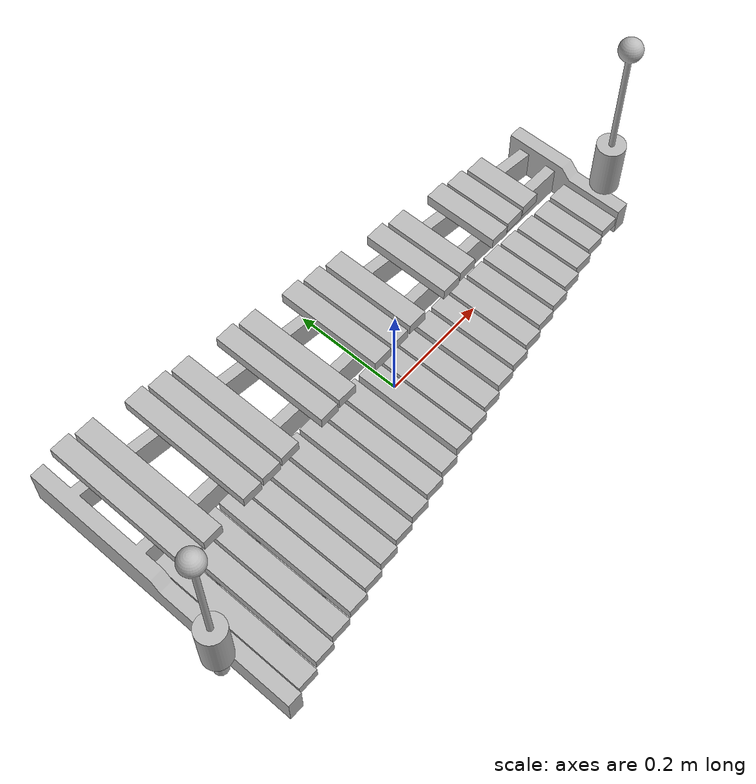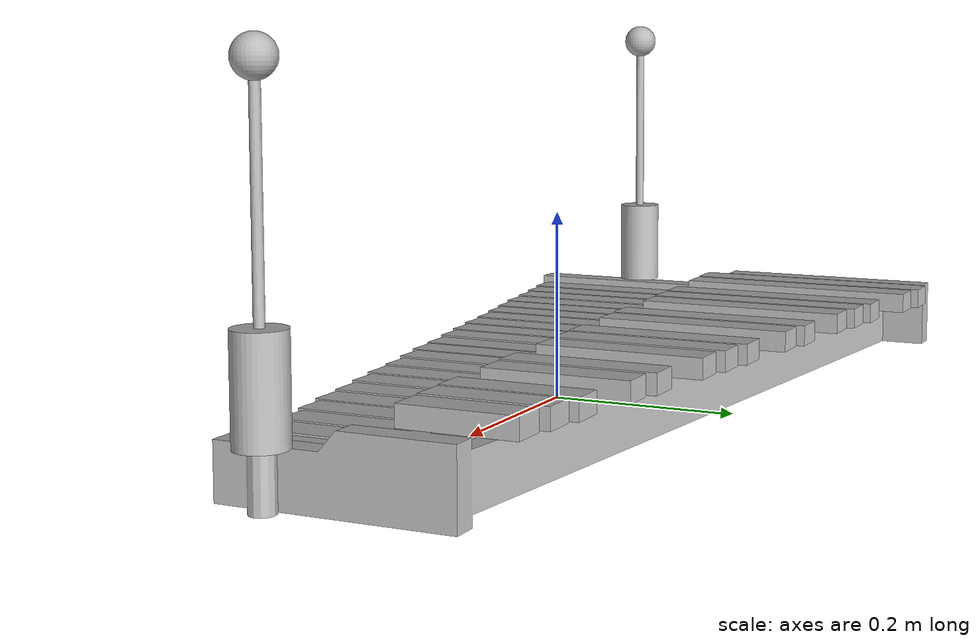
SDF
<?xml version="1.0" ?>
<sdf version="1.6">
	<model name="xylophone">
		<link name="C_3">
			<self_collide>false</self_collide>
			<pose frame="">0.45448777694738957 -0.027488463586150244 0.03602607641514571 0.0 -0.0 0.0</pose>
			<inertial>
				<pose frame="">0.0 0.0 0.0 0 0 0</pose>
				<mass>0.046262938070170255</mass>
				<inertia>
					<ixx>0.00014350861797053416</ixx>
					<ixy>0.0005779909002568655</ixy>
					<ixz>4.5810622566366254e-05</ixz>
					<iyy>0.009623382878610719</iyy>
					<iyz>-0.0007574855243569923</iyz>
					<izz>0.009643073975087112</izz>
				</inertia>
			</inertial>
			<collision name="C_3_collision">
				<geometry>
					<mesh>
						<uri>model://xylophone/meshes/CAD/C_3.stl</uri>
						<scale>0.001 0.001 0.001</scale>
					</mesh>
				</geometry>
			</collision>
			<visual name="C_3_visual">
				<geometry>
					<mesh>
						<uri>model://xylophone/meshes/CAD/C_3.stl</uri>
						<scale>0.001 0.001 0.001</scale>
					</mesh>
				</geometry>
			</visual>
		</link>
		<link name="A_1">
			<self_collide>false</self_collide>
			<pose frame="">0.06149651719972713 -0.05578498333630287 0.0360155619608559 0.0 -0.0 0.0</pose>
			<inertial>
				<pose frame="">0.0 0.0 0.0 0 0 0</pose>
				<mass>0.07752053807017041</mass>
				<inertia>
					<ixx>0.0005637106499617699</ixx>
					<ixy>0.00026595636558719233</ixy>
					<ixz>0.0001557469170174067</ixz>
					<iyy>0.00040595501694493254</iyy>
					<iyz>-0.0001716965634829288</iyz>
					<izz>0.0007623069998125596</izz>
				</inertia>
			</inertial>
			<collision name="A_1_collision">
				<geometry>
					<mesh>
						<uri>model://xylophone/meshes/CAD/A_1.stl</uri>
						<scale>0.001 0.001 0.001</scale>
					</mesh>
				</geometry>
			</collision>
			<visual name="A_1_visual">
				<geometry>
					<mesh>
						<uri>model://xylophone/meshes/CAD/A_1.stl</uri>
						<scale>0.001 0.001 0.001</scale>
					</mesh>
				</geometry>
			</visual>
		</link>
		<link name="A_2">
			<self_collide>false</self_collide>
			<pose frame="">0.3664899596665138 -0.03382394881431653 0.03602312095864534 0.0 -0.0 0.0</pose>
			<inertial>
				<pose frame="">0.0 0.0 0.0 0 0 0</pose>
				<mass>0.05217653807017028</mass>
				<inertia>
					<ixx>0.0001963569812425986</ixx>
					<ixy>0.000646807485995429</ixy>
					<ixz>6.357095834000371e-05</ixz>
					<iyy>0.007084032289712486</iyy>
					<iyz>-0.00068884366238625</iyz>
					<izz>0.007140766667860942</izz>
				</inertia>
			</inertial>
			<collision name="A_2_collision">
				<geometry>
					<mesh>
						<uri>model://xylophone/meshes/CAD/A_2.stl</uri>
						<scale>0.001 0.001 0.001</scale>
					</mesh>
				</geometry>
			</collision>
			<visual name="A_2_visual">
				<geometry>
					<mesh>
						<uri>model://xylophone/meshes/CAD/A_2.stl</uri>
						<scale>0.001 0.001 0.001</scale>
					</mesh>
				</geometry>
			</visual>
		</link>
		<link name="G_2">
			<self_collide>false</self_collide>
			<pose frame="">0.32349125577799714 -0.03691903091623005 0.03602138936294325 0.0 -0.0 0.0</pose>
			<inertial>
				<pose frame="">0.0 0.0 0.0 0 0 0</pose>
				<mass>0.0564005380701702</mass>
				<inertia>
					<ixx>0.00023673750732044108</ixx>
					<ixy>0.0006736102242703571</ixy>
					<ixz>7.500282789721354e-05</ixz>
					<iyy>0.005984210396933613</iyy>
					<iyz>-0.0006572161322062213</iyz>
					<izz>0.006070035957159913</izz>
				</inertia>
			</inertial>
			<collision name="G_2_collision">
				<geometry>
					<mesh>
						<uri>model://xylophone/meshes/CAD/G_2.stl</uri>
						<scale>0.001 0.001 0.001</scale>
					</mesh>
				</geometry>
			</collision>
			<visual name="G_2_visual">
				<geometry>
					<mesh>
						<uri>model://xylophone/meshes/CAD/G_2.stl</uri>
						<scale>0.001 0.001 0.001</scale>
					</mesh>
				</geometry>
			</visual>
		</link>
		<link name="D_2">
			<self_collide>false</self_collide>
			<pose frame="">0.19349458215986062 -0.04628071805747754 0.036018016157183703 0.0 -0.0 0.0</pose>
			<inertial>
				<pose frame="">0.0 0.0 0.0 0 0 0</pose>
				<mass>0.0669605380701705</mass>
				<inertia>
					<ixx>0.00037410228126468804</ixx>
					<ixy>0.0005996545358997112</ixy>
					<ixz>0.00011161645559815828</ixz>
					<iyy>0.0026044491856748978</iyy>
					<iyz>-0.00046666965765261153</iyz>
					<izz>0.0027994161598454428</izz>
				</inertia>
			</inertial>
			<collision name="D_2_collision">
				<geometry>
					<mesh>
						<uri>model://xylophone/meshes/CAD/D_2.stl</uri>
						<scale>0.001 0.001 0.001</scale>
					</mesh>
				</geometry>
			</collision>
			<visual name="D_2_visual">
				<geometry>
					<mesh>
						<uri>model://xylophone/meshes/CAD/D_2.stl</uri>
						<scale>0.001 0.001 0.001</scale>
					</mesh>
				</geometry>
			</visual>
		</link>
		<link name="H_1">
			<self_collide>false</self_collide>
			<pose frame="">0.10649542005933199 -0.052543980478078484 0.03601645877978332 0.0 -0.0 0.0</pose>
			<inertial>
				<pose frame="">0.0 0.0 0.0 0 0 0</pose>
				<mass>0.07329653807017017</mass>
				<inertia>
					<ixx>0.00048538135747040593</ixx>
					<ixy>0.0004101615293656462</ixy>
					<ixz>0.0001387082041457808</ixz>
					<iyy>0.0009379223650701782</iyy>
					<iyz>-0.0002811373347203263</iyz>
					<izz>0.0012272343994464419</izz>
				</inertia>
			</inertial>
			<collision name="H_1_collision">
				<geometry>
					<mesh>
						<uri>model://xylophone/meshes/CAD/H_1.stl</uri>
						<scale>0.001 0.001 0.001</scale>
					</mesh>
				</geometry>
			</collision>
			<visual name="H_1_visual">
				<geometry>
					<mesh>
						<uri>model://xylophone/meshes/CAD/H_1.stl</uri>
						<scale>0.001 0.001 0.001</scale>
					</mesh>
				</geometry>
			</visual>
		</link>
		<link name="C_2">
			<self_collide>false</self_collide>
			<pose frame="">0.150494933134312 -0.04937679410556129 0.03601694710131839 0.0 -0.0 0.0</pose>
			<inertial>
				<pose frame="">0.0 0.0 0.0 0 0 0</pose>
				<mass>0.07118453807017067</mass>
				<inertia>
					<ixx>0.0004382542098897835</ixx>
					<ixy>0.000528986973650466</ixy>
					<ixz>0.00012659221822118325</ixz>
					<iyy>0.0017158151854811217</iyy>
					<iyz>-0.0003858485657120155</iyz>
					<izz>0.0019636447442767614</izz>
				</inertia>
			</inertial>
			<collision name="C_2_collision">
				<geometry>
					<mesh>
						<uri>model://xylophone/meshes/CAD/C_2.stl</uri>
						<scale>0.001 0.001 0.001</scale>
					</mesh>
				</geometry>
			</collision>
			<visual name="C_2_visual">
				<geometry>
					<mesh>
						<uri>model://xylophone/meshes/CAD/C_2.stl</uri>
						<scale>0.001 0.001 0.001</scale>
					</mesh>
				</geometry>
			</visual>
		</link>
		<link name="F_0">
			<self_collide>false</self_collide>
			<pose frame="">-0.3255003203067164 -0.08365491980126465 0.03601087897986214 0.0 -0.0 0.0</pose>
			<inertial>
				<pose frame="">0.0 0.0 0.0 0 0 0</pose>
				<mass>0.11089013807017029</mass>
				<inertia>
					<ixx>0.00156375516577235</ixx>
					<ixy>-0.0030195018902751483</ixy>
					<ixz>0.0003340551538263901</ixz>
					<iyy>0.011910151380577003</iyy>
					<iyz>0.001299804377420893</iyz>
					<izz>0.013177362061655212</izz>
				</inertia>
			</inertial>
			<collision name="F_0_collision">
				<geometry>
					<mesh>
						<uri>model://xylophone/meshes/CAD/F_0.stl</uri>
						<scale>0.001 0.001 0.001</scale>
					</mesh>
				</geometry>
			</collision>
			<visual name="F_0_visual">
				<geometry>
					<mesh>
						<uri>model://xylophone/meshes/CAD/F_0.stl</uri>
						<scale>0.001 0.001 0.001</scale>
					</mesh>
				</geometry>
			</visual>
		</link>
		<link name="H_0">
			<self_collide>false</self_collide>
			<pose frame="">-0.19850142124805137 -0.07450890386704333 0.036012229977680346 0.0 -0.0 0.0</pose>
			<inertial>
				<pose frame="">0.0 0.0 0.0 0 0 0</pose>
				<mass>0.09864053807016995</mass>
				<inertia>
					<ixx>0.0011297880013564647</ixx>
					<ixy>-0.0014588971209523287</ixy>
					<ixz>0.0002646747647855426</ixz>
					<iyy>0.0040301999809936335</iyy>
					<iyz>0.0007051289555880382</iyz>
					<izz>0.004896182595255956</izz>
				</inertia>
			</inertial>
			<collision name="H_0_collision">
				<geometry>
					<mesh>
						<uri>model://xylophone/meshes/CAD/H_0.stl</uri>
						<scale>0.001 0.001 0.001</scale>
					</mesh>
				</geometry>
			</collision>
			<visual name="H_0_visual">
				<geometry>
					<mesh>
						<uri>model://xylophone/meshes/CAD/H_0.stl</uri>
						<scale>0.001 0.001 0.001</scale>
					</mesh>
				</geometry>
			</visual>
		</link>
		<link name="G_0">
			<self_collide>false</self_collide>
			<pose frame="">-0.2845007949222958 -0.08070296566929662 0.0360113097895996 0.0 -0.0 0.0</pose>
			<inertial>
				<pose frame="">0.0 0.0 0.0 0 0 0</pose>
				<mass>0.10666613807017081</mass>
				<inertia>
					<ixx>0.0014065452163680647</ixx>
					<ixy>-0.002449055109061058</ixy>
					<ixz>0.0003099945539825456</ixz>
					<iyy>0.008788782811672976</iyy>
					<iyz>0.0010928203425676509</iyz>
					<izz>0.009910072887346896</izz>
				</inertia>
			</inertial>
			<collision name="G_0_collision">
				<geometry>
					<mesh>
						<uri>model://xylophone/meshes/CAD/G_0.stl</uri>
						<scale>0.001 0.001 0.001</scale>
					</mesh>
				</geometry>
			</collision>
			<visual name="G_0_visual">
				<geometry>
					<mesh>
						<uri>model://xylophone/meshes/CAD/G_0.stl</uri>
						<scale>0.001 0.001 0.001</scale>
					</mesh>
				</geometry>
			</visual>
		</link>
		<link name="F_sharp_1">
			<self_collide>false</self_collide>
			<pose frame="">-0.0035009273967744653 0.1199439255091977 0.06601438613621244 0.0 -0.0 0.0</pose>
			<inertial>
				<pose frame="">0.0 0.0 0.0 0 0 0</pose>
				<mass>0.08385653807017031</mass>
				<inertia>
					<ixx>0.00185212410578797</ixx>
					<ixy>3.521746415105739e-05</ixy>
					<ixz>-0.0006639784437789112</ixz>
					<iyy>0.00037969762628502636</iyy>
					<iyz>1.9379748691711704e-05</iyz>
					<izz>0.001494182271399933</izz>
				</inertia>
			</inertial>
			<collision name="F_sharp_1_collision">
				<geometry>
					<mesh>
						<uri>model://xylophone/meshes/CAD/F_sharp_1.stl</uri>
						<scale>0.001 0.001 0.001</scale>
					</mesh>
				</geometry>
			</collision>
			<visual name="F_sharp_1_visual">
				<geometry>
					<mesh>
						<uri>model://xylophone/meshes/CAD/F_sharp_1.stl</uri>
						<scale>0.001 0.001 0.001</scale>
					</mesh>
				</geometry>
			</visual>
		</link>
		<link name="G_1">
			<self_collide>false</self_collide>
			<pose frame="">0.01949650478805824 -0.05880934615967254 0.03601468195855061 0.0 -0.0 0.0</pose>
			<inertial>
				<pose frame="">0.0 0.0 0.0 0 0 0</pose>
				<mass>0.08216693807017009</mass>
				<inertia>
					<ixx>0.0006545444626561857</ixx>
					<ixy>9.422558134410292e-05</ixy>
					<ixz>0.0001740280740671962</ixz>
					<iyy>0.0001507726236926445</iyy>
					<iyz>-5.7696099045153296e-05</iyz>
					<izz>0.0005855401408546882</izz>
				</inertia>
			</inertial>
			<collision name="G_1_collision">
				<geometry>
					<mesh>
						<uri>model://xylophone/meshes/CAD/G_1.stl</uri>
						<scale>0.001 0.001 0.001</scale>
					</mesh>
				</geometry>
			</collision>
			<visual name="G_1_visual">
				<geometry>
					<mesh>
						<uri>model://xylophone/meshes/CAD/G_1.stl</uri>
						<scale>0.001 0.001 0.001</scale>
					</mesh>
				</geometry>
			</visual>
		</link>
		<link name="C_sharo_0">
			<self_collide>false</self_collide>
			<pose frame="">-0.4375002983547113 0.1462203117640928 0.06601007319771958 0.0 -0.0 0.0</pose>
			<inertial>
				<pose frame="">0.0 0.0 0.0 0 0 0</pose>
				<mass>0.11976053807017031</mass>
				<inertia>
					<ixx>0.0038925305791229804</ixx>
					<ixy>0.007661256356691602</ixy>
					<ixz>-0.0011559301879227664</ixz>
					<iyy>0.02346367010396685</iyy>
					<iyz>0.003458615468209218</iyz>
					<izz>0.026302869318416765</izz>
				</inertia>
			</inertial>
			<collision name="C_sharo_0_collision">
				<geometry>
					<mesh>
						<uri>model://xylophone/meshes/CAD/C_sharo_0.stl</uri>
						<scale>0.001 0.001 0.001</scale>
					</mesh>
				</geometry>
			</collision>
			<visual name="C_sharo_0_visual">
				<geometry>
					<mesh>
						<uri>model://xylophone/meshes/CAD/C_sharo_0.stl</uri>
						<scale>0.001 0.001 0.001</scale>
					</mesh>
				</geometry>
			</visual>
		</link>
		<link name="C_sharp_1">
			<self_collide>false</self_collide>
			<pose frame="">-0.13250133907726727 0.12775506668331377 0.06601277712150477 0.0 -0.0 0.0</pose>
			<inertial>
				<pose frame="">0.0 0.0 0.0 0 0 0</pose>
				<mass>0.09441653807017004</mass>
				<inertia>
					<ixx>0.002351261287373469</ixx>
					<ixy>0.0015982653768845821</ixy>
					<ixz>-0.000796258448287107</ixz>
					<iyy>0.002083966338135435</iyy>
					<iyz>0.00082584005552024</iyz>
					<izz>0.003604737604835843</izz>
				</inertia>
			</inertial>
			<collision name="C_sharp_1_collision">
				<geometry>
					<mesh>
						<uri>model://xylophone/meshes/CAD/C_sharp_1.stl</uri>
						<scale>0.001 0.001 0.001</scale>
					</mesh>
				</geometry>
			</collision>
			<visual name="C_sharp_1_visual">
				<geometry>
					<mesh>
						<uri>model://xylophone/meshes/CAD/C_sharp_1.stl</uri>
						<scale>0.001 0.001 0.001</scale>
					</mesh>
				</geometry>
			</visual>
		</link>
		<link name="G_sharp_1">
			<self_collide>false</self_collide>
			<pose frame="">0.03949863925764861 0.11734075953071503 0.0660151492293002 0.0 -0.0 0.0</pose>
			<inertial>
				<pose frame="">0.0 0.0 0.0 0 0 0</pose>
				<mass>0.0796325380701699</mass>
				<inertia>
					<ixx>0.00168388148404294</ixx>
					<ixy>-0.00036907737856113084</ixy>
					<ixz>-0.0006168551738052698</ixz>
					<iyy>0.0004838428261088353</iyy>
					<iyz>-0.0002076431768642761</iyz>
					<izz>0.001467225073478716</izz>
				</inertia>
			</inertial>
			<collision name="G_sharp_1_collision">
				<geometry>
					<mesh>
						<uri>model://xylophone/meshes/CAD/G_sharp_1.stl</uri>
						<scale>0.001 0.001 0.001</scale>
					</mesh>
				</geometry>
			</collision>
			<visual name="G_sharp_1_visual">
				<geometry>
					<mesh>
						<uri>model://xylophone/meshes/CAD/G_sharp_1.stl</uri>
						<scale>0.001 0.001 0.001</scale>
					</mesh>
				</geometry>
			</visual>
		</link>
		<link name="E_2">
			<self_collide>false</self_collide>
			<pose frame="">0.23749352133778145 -0.04311186553743143 0.036019100567803046 0.0 -0.0 0.0</pose>
			<inertial>
				<pose frame="">0.0 0.0 0.0 0 0 0</pose>
				<mass>0.06315893807017048</mass>
				<inertia>
					<ixx>0.00032032860410619333</ixx>
					<ixy>0.0006466898188510383</ixy>
					<ixz>9.807373484942315e-05</ixz>
					<iyy>0.003654274866406667</iyy>
					<iyz>-0.0005402831581871882</iyz>
					<izz>0.0038056285730187164</izz>
				</inertia>
			</inertial>
			<collision name="E_2_collision">
				<geometry>
					<mesh>
						<uri>model://xylophone/meshes/CAD/E_2.stl</uri>
						<scale>0.001 0.001 0.001</scale>
					</mesh>
				</geometry>
			</collision>
			<visual name="E_2_visual">
				<geometry>
					<mesh>
						<uri>model://xylophone/meshes/CAD/E_2.stl</uri>
						<scale>0.001 0.001 0.001</scale>
					</mesh>
				</geometry>
			</visual>
		</link>
		<link name="E_1">
			<self_collide>false</self_collide>
			<pose frame="">-0.06850247886257901 -0.06514692540500432 0.03601363086475185 0.0 -0.0 0.0</pose>
			<inertial>
				<pose frame="">0.0 0.0 0.0 0 0 0</pose>
				<mass>0.08850293807017058</mass>
				<inertia>
					<ixx>0.0008193526243243245</ixx>
					<ixy>-0.00039495163737030616</ixy>
					<ixz>0.00020764231199439065</ixz>
					<iyy>0.0005440576375199952</iyy>
					<iyz>0.00021833746333284134</iyz>
					<izz>0.0011266993003501767</izz>
				</inertia>
			</inertial>
			<collision name="E_1_collision">
				<geometry>
					<mesh>
						<uri>model://xylophone/meshes/CAD/E_1.stl</uri>
						<scale>0.001 0.001 0.001</scale>
					</mesh>
				</geometry>
			</collision>
			<visual name="E_1_visual">
				<geometry>
					<mesh>
						<uri>model://xylophone/meshes/CAD/E_1.stl</uri>
						<scale>0.001 0.001 0.001</scale>
					</mesh>
				</geometry>
			</visual>
		</link>
		<link name="F_sharp_0">
			<self_collide>false</self_collide>
			<pose frame="">-0.3065023330346604 0.13828971878512886 0.06601130978959967 0.0 -0.0 0.0</pose>
			<inertial>
				<pose frame="">0.0 0.0 0.0 0 0 0</pose>
				<mass>0.10666613807016981</mass>
				<inertia>
					<ixx>0.003078227372682137</ixx>
					<ixy>0.004521179686787205</ixy>
					<ixz>-0.0009737211703134111</ixz>
					<iyy>0.010502230453686324</iyy>
					<iyz>0.002158133991258258</iyz>
					<izz>0.0126422611560954</izz>
				</inertia>
			</inertial>
			<collision name="F_sharp_0_collision">
				<geometry>
					<mesh>
						<uri>model://xylophone/meshes/CAD/F_sharp_0.stl</uri>
						<scale>0.001 0.001 0.001</scale>
					</mesh>
				</geometry>
			</collision>
			<visual name="F_sharp_0_visual">
				<geometry>
					<mesh>
						<uri>model://xylophone/meshes/CAD/F_sharp_0.stl</uri>
						<scale>0.001 0.001 0.001</scale>
					</mesh>
				</geometry>
			</visual>
		</link>
		<link name="D_sharp_0">
			<self_collide>false</self_collide>
			<pose frame="">-0.39450237109720454 0.14361683047737395 0.06601044147244788 0.0 -0.0 0.0</pose>
			<inertial>
				<pose frame="">0.0 0.0 0.0 0 0 0</pose>
				<mass>0.11553653807016968</mass>
				<inertia>
					<ixx>0.0036143236415149063</ixx>
					<ixy>0.00654599463721406</ixy>
					<ixz>-0.0010953106504324379</ixz>
					<iyy>0.018502853877777732</iyy>
					<iyz>0.0030087171922226655</iyz>
					<izz>0.02110098637861958</izz>
				</inertia>
			</inertial>
			<collision name="D_sharp_0_collision">
				<geometry>
					<mesh>
						<uri>model://xylophone/meshes/CAD/D_sharp_0.stl</uri>
						<scale>0.001 0.001 0.001</scale>
					</mesh>
				</geometry>
			</collision>
			<visual name="D_sharp_0_visual">
				<geometry>
					<mesh>
						<uri>model://xylophone/meshes/CAD/D_sharp_0.stl</uri>
						<scale>0.001 0.001 0.001</scale>
					</mesh>
				</geometry>
			</visual>
		</link>
		<link name="D_sharp_2">
			<self_collide>false</self_collide>
			<pose frame="">0.21550022682864847 0.10668307113308259 0.06601860291095038 0.0 -0.0 0.0</pose>
			<inertial>
				<pose frame="">0.0 0.0 0.0 0 0 0</pose>
				<mass>0.06484853807017023</mass>
				<inertia>
					<ixx>0.0011515471198054802</ixx>
					<ixy>-0.0014908831360279898</ixy>
					<ixz>-0.00045673363302472104</ixz>
					<iyy>0.0033044655699929907</iyy>
					<iyz>-0.0009226016126176757</iyz>
					<izz>0.0038855042371254075</izz>
				</inertia>
			</inertial>
			<collision name="D_sharp_2_collision">
				<geometry>
					<mesh>
						<uri>model://xylophone/meshes/CAD/D_sharp_2.stl</uri>
						<scale>0.001 0.001 0.001</scale>
					</mesh>
				</geometry>
			</collision>
			<visual name="D_sharp_2_visual">
				<geometry>
					<mesh>
						<uri>model://xylophone/meshes/CAD/D_sharp_2.stl</uri>
						<scale>0.001 0.001 0.001</scale>
					</mesh>
				</geometry>
			</visual>
		</link>
		<link name="F_2">
			<self_collide>false</self_collide>
			<pose frame="">0.28149210789051393 -0.03994237509789713 0.036019761377345264 0.0 -0.0 0.0</pose>
			<inertial>
				<pose frame="">0.0 0.0 0.0 0 0 0</pose>
				<mass>0.06104693807017031</mass>
				<inertia>
					<ixx>0.00028605421896397856</ixx>
					<ixy>0.000686398073747341</ixy>
					<ixz>8.782670453755313e-05</ixz>
					<iyy>0.004926065586843015</iyy>
					<iyz>-0.0006189748103290157</iyz>
					<izz>0.0050487895803128496</izz>
				</inertia>
			</inertial>
			<collision name="F_2_collision">
				<geometry>
					<mesh>
						<uri>model://xylophone/meshes/CAD/F_2.stl</uri>
						<scale>0.001 0.001 0.001</scale>
					</mesh>
				</geometry>
			</collision>
			<visual name="F_2_visual">
				<geometry>
					<mesh>
						<uri>model://xylophone/meshes/CAD/F_2.stl</uri>
						<scale>0.001 0.001 0.001</scale>
					</mesh>
				</geometry>
			</visual>
		</link>
		<link name="F_1">
			<self_collide>false</self_collide>
			<pose frame="">-0.022503625927337362 -0.06183418013547204 0.03601431403392828 0.0 -0.0 0.0</pose>
			<inertial>
				<pose frame="">0.0 0.0 0.0 0 0 0</pose>
				<mass>0.08427893807017009</mass>
				<inertia>
					<ixx>0.0007159850359121407</ixx>
					<ixy>-0.00011725959732705096</ixy>
					<ixz>0.00018768066032254913</ixz>
					<iyy>0.00016528966458542244</iyy>
					<iyz>6.830225087653157e-05</iyz>
					<izz>0.0006558530830034214</izz>
				</inertia>
			</inertial>
			<collision name="F_1_collision">
				<geometry>
					<mesh>
						<uri>model://xylophone/meshes/CAD/F_1.stl</uri>
						<scale>0.001 0.001 0.001</scale>
					</mesh>
				</geometry>
			</collision>
			<visual name="F_1_visual">
				<geometry>
					<mesh>
						<uri>model://xylophone/meshes/CAD/F_1.stl</uri>
						<scale>0.001 0.001 0.001</scale>
					</mesh>
				</geometry>
			</visual>
		</link>
		<link name="D_0">
			<self_collide>false</self_collide>
			<pose frame="">-0.41249989944268217 -0.08992105535550353 0.036010290977753205 0.0 -0.0 0.0</pose>
			<inertial>
				<pose frame="">0.0 0.0 0.0 0 0 0</pose>
				<mass>0.11722613807017015</mass>
				<inertia>
					<ixx>0.0018598905758930105</ixx>
					<ixy>-0.004348201885210563</ixy>
					<ixz>0.0003795880739571235</ixz>
					<iyy>0.020117250266443582</iyy>
					<iyz>0.0017413054249799736</iyz>
					<izz>0.02166366234164245</izz>
				</inertia>
			</inertial>
			<collision name="D_0_collision">
				<geometry>
					<mesh>
						<uri>model://xylophone/meshes/CAD/D_0.stl</uri>
						<scale>0.001 0.001 0.001</scale>
					</mesh>
				</geometry>
			</collision>
			<visual name="D_0_visual">
				<geometry>
					<mesh>
						<uri>model://xylophone/meshes/CAD/D_0.stl</uri>
						<scale>0.001 0.001 0.001</scale>
					</mesh>
				</geometry>
			</visual>
		</link>
		<link name="D_sharp_1">
			<self_collide>false</self_collide>
			<pose frame="">-0.08950183741044956 0.12515057541342944 0.06601337551425865 0.0 -0.0 0.0</pose>
			<inertial>
				<pose frame="">0.0 0.0 0.0 0 0 0</pose>
				<mass>0.09019253807017003</mass>
				<inertia>
					<ixx>0.002153721443125704</ixx>
					<ixy>0.0010102737508272117</ixy>
					<ixz>-0.0007451361000366005</ixz>
					<iyy>0.0011297617663655814</iyy>
					<iyz>0.0005328852358795294</iyz>
					<izz>0.002490133412818225</izz>
				</inertia>
			</inertial>
			<collision name="D_sharp_1_collision">
				<geometry>
					<mesh>
						<uri>model://xylophone/meshes/CAD/D_sharp_1.stl</uri>
						<scale>0.001 0.001 0.001</scale>
					</mesh>
				</geometry>
			</collision>
			<visual name="D_sharp_1_visual">
				<geometry>
					<mesh>
						<uri>model://xylophone/meshes/CAD/D_sharp_1.stl</uri>
						<scale>0.001 0.001 0.001</scale>
					</mesh>
				</geometry>
			</visual>
		</link>
		<link name="H_2">
			<self_collide>false</self_collide>
			<pose frame="">0.40948962772689607 -0.030728125467924396 0.03602515761683381 0.0 -0.0 0.0</pose>
			<inertial>
				<pose frame="">0.0 0.0 0.0 0 0 0</pose>
				<mass>0.047952538070170234</mass>
				<inertia>
					<ixx>0.00016136027028865857</ixx>
					<ixy>0.000603399420722362</ixy>
					<ixz>5.3079424705437056e-05</ixz>
					<iyy>0.008110572356303606</iyy>
					<iyz>-0.0007073954040874137</iyz>
					<izz>0.00814359936749812</izz>
				</inertia>
			</inertial>
			<collision name="H_2_collision">
				<geometry>
					<mesh>
						<uri>model://xylophone/meshes/CAD/H_2.stl</uri>
						<scale>0.001 0.001 0.001</scale>
					</mesh>
				</geometry>
			</collision>
			<visual name="H_2_visual">
				<geometry>
					<mesh>
						<uri>model://xylophone/meshes/CAD/H_2.stl</uri>
						<scale>0.001 0.001 0.001</scale>
					</mesh>
				</geometry>
			</visual>
		</link>
		<link name="A_sharp_0">
			<self_collide>false</self_collide>
			<pose frame="">-0.22050207310709716 0.13308299544547916 0.06601222997768041 0.0 -0.0 0.0</pose>
			<inertial>
				<pose frame="">0.0 0.0 0.0 0 0 0</pose>
				<mass>0.09864053807016988</mass>
				<inertia>
					<ixx>0.0026311545152743563</ixx>
					<ixy>0.0028946263293968947</ixy>
					<ixz>-0.0008665671192462426</ixz>
					<iyy>0.005241415188947639</iyy>
					<iyz>0.0014357940250123214</iyz>
					<izz>0.007004939459548935</izz>
				</inertia>
			</inertial>
			<collision name="A_sharp_0_collision">
				<geometry>
					<mesh>
						<uri>model://xylophone/meshes/CAD/A_sharp_0.stl</uri>
						<scale>0.001 0.001 0.001</scale>
					</mesh>
				</geometry>
			</collision>
			<visual name="A_sharp_0_visual">
				<geometry>
					<mesh>
						<uri>model://xylophone/meshes/CAD/A_sharp_0.stl</uri>
						<scale>0.001 0.001 0.001</scale>
					</mesh>
				</geometry>
			</visual>
		</link>
		<link name="C_1">
			<self_collide>false</self_collide>
			<pose frame="">-0.15450134655883735 -0.07133918289094804 0.03601255249251712 0.0 -0.0 0.0</pose>
			<inertial>
				<pose frame="">0.0 0.0 0.0 0 0 0</pose>
				<mass>0.09610613807017018</mass>
				<inertia>
					<ixx>0.0010341362889035497</ixx>
					<ixy>-0.001059272077836459</ixy>
					<ixz>0.00024690657511755246</ixz>
					<iyy>0.002433918887099075</iyy>
					<iyz>0.0005347326067323264</iyz>
					<izz>0.0032110233953084816</izz>
				</inertia>
			</inertial>
			<collision name="C_1_collision">
				<geometry>
					<mesh>
						<uri>model://xylophone/meshes/CAD/C_1.stl</uri>
						<scale>0.001 0.001 0.001</scale>
					</mesh>
				</geometry>
			</collision>
			<visual name="C_1_visual">
				<geometry>
					<mesh>
						<uri>model://xylophone/meshes/CAD/C_1.stl</uri>
						<scale>0.001 0.001 0.001</scale>
					</mesh>
				</geometry>
			</visual>
		</link>
		<link name="D_1">
			<self_collide>false</self_collide>
			<pose frame="">-0.11150208314780516 -0.06824404740057666 0.036013069472034615 0.0 -0.0 0.0</pose>
			<inertial>
				<pose frame="">0.0 0.0 0.0 0 0 0</pose>
				<mass>0.09230453807016999</mass>
				<inertia>
					<ixx>0.0009223930941750333</ixx>
					<ixy>-0.0007023662400896868</ixy>
					<ixz>0.00022685344362365534</ixz>
					<iyy>0.0012818714600652393</iyy>
					<iyz>0.00037065069476459637</iyz>
					<izz>0.0019573931831461315</izz>
				</inertia>
			</inertial>
			<collision name="D_1_collision">
				<geometry>
					<mesh>
						<uri>model://xylophone/meshes/CAD/D_1.stl</uri>
						<scale>0.001 0.001 0.001</scale>
					</mesh>
				</geometry>
			</collision>
			<visual name="D_1_visual">
				<geometry>
					<mesh>
						<uri>model://xylophone/meshes/CAD/D_1.stl</uri>
						<scale>0.001 0.001 0.001</scale>
					</mesh>
				</geometry>
			</visual>
		</link>
		<link name="A_0">
			<self_collide>false</self_collide>
			<pose frame="">-0.2415016436952702 -0.0776063070021239 0.03601172776937133 0.0 -0.0 0.0</pose>
			<inertial>
				<pose frame="">0.0 0.0 0.0 0 0 0</pose>
				<mass>0.10286453807017032</mass>
				<inertia>
					<ixx>0.0012676306127429283</ixx>
					<ixy>-0.0019278850709250144</ixy>
					<ixz>0.0002874784594844922</ixz>
					<iyy>0.006148997813460238</iyy>
					<iyz>0.000894600705057026</iyz>
					<izz>0.007141533695109024</izz>
				</inertia>
			</inertial>
			<collision name="A_0_collision">
				<geometry>
					<mesh>
						<uri>model://xylophone/meshes/CAD/A_0.stl</uri>
						<scale>0.001 0.001 0.001</scale>
					</mesh>
				</geometry>
			</collision>
			<visual name="A_0_visual">
				<geometry>
					<mesh>
						<uri>model://xylophone/meshes/CAD/A_0.stl</uri>
						<scale>0.001 0.001 0.001</scale>
					</mesh>
				</geometry>
			</visual>
		</link>
		<link name="A_sharp_1">
			<self_collide>false</self_collide>
			<pose frame="">0.08450061954516024 0.11461692493126807 0.06601590869913629 0.0 -0.0 0.0</pose>
			<inertial>
				<pose frame="">0.0 0.0 0.0 0 0 0</pose>
				<mass>0.07583093807017009</mass>
				<inertia>
					<ixx>0.0015345929801101413</ixx>
					<ixy>-0.0007344360291484083</ixy>
					<ixz>-0.0005737777927615215</ixz>
					<iyy>0.0008839059795422408</iyy>
					<iyz>-0.00042301389885720256</iyz>
					<izz>0.0017514259245793213</izz>
				</inertia>
			</inertial>
			<collision name="A_sharp_1_collision">
				<geometry>
					<mesh>
						<uri>model://xylophone/meshes/CAD/A_sharp_1.stl</uri>
						<scale>0.001 0.001 0.001</scale>
					</mesh>
				</geometry>
			</collision>
			<visual name="A_sharp_1_visual">
				<geometry>
					<mesh>
						<uri>model://xylophone/meshes/CAD/A_sharp_1.stl</uri>
						<scale>0.001 0.001 0.001</scale>
					</mesh>
				</geometry>
			</visual>
		</link>
		<link name="C_0">
			<self_collide>false</self_collide>
			<pose frame="">-0.45649990306296745 -0.09308864361366516 0.036009933060580604 0.0 -0.0 0.0</pose>
			<inertial>
				<pose frame="">0.0 0.0 0.0 0 0 0</pose>
				<mass>0.12145013807016966</mass>
				<inertia>
					<ixx>0.0020546219933388083</ixx>
					<ixy>-0.005161020937150361</ixy>
					<ixz>0.0004071161032131988</ixz>
					<iyy>0.025485896387590367</iyy>
					<iyz>0.0019964619244804945</iyz>
					<izz>0.02721575053623504</izz>
				</inertia>
			</inertial>
			<collision name="C_0_collision">
				<geometry>
					<mesh>
						<uri>model://xylophone/meshes/CAD/C_0.stl</uri>
						<scale>0.001 0.001 0.001</scale>
					</mesh>
				</geometry>
			</collision>
			<visual name="C_0_visual">
				<geometry>
					<mesh>
						<uri>model://xylophone/meshes/CAD/C_0.stl</uri>
						<scale>0.001 0.001 0.001</scale>
					</mesh>
				</geometry>
			</visual>
		</link>
		<link name="E_0">
			<self_collide>false</self_collide>
			<pose frame="">-0.37050046901145656 -0.0868963158384845 0.03601063589589608 0.0 -0.0 0.0</pose>
			<inertial>
				<pose frame="">0.0 0.0 0.0 0 0 0</pose>
				<mass>0.11342453807017014</mass>
				<inertia>
					<ixx>0.0016923618165711688</ixx>
					<ixy>-0.00365171534585143</ixy>
					<ixz>0.0003549269613000413</ixz>
					<iyy>0.015734828329686004</iyy>
					<iyz>0.0015133050453721767</iyz>
					<izz>0.01712387205516303</izz>
				</inertia>
			</inertial>
			<collision name="E_0_collision">
				<geometry>
					<mesh>
						<uri>model://xylophone/meshes/CAD/E_0.stl</uri>
						<scale>0.001 0.001 0.001</scale>
					</mesh>
				</geometry>
			</collision>
			<visual name="E_0_visual">
				<geometry>
					<mesh>
						<uri>model://xylophone/meshes/CAD/E_0.stl</uri>
						<scale>0.001 0.001 0.001</scale>
					</mesh>
				</geometry>
			</visual>
		</link>
		<link name="C_sharp_2">
			<self_collide>false</self_collide>
			<pose frame="">0.1714996124623029 0.10934822703914217 0.06601735912877227 0.0 -0.0 0.0</pose>
			<inertial>
				<pose frame="">0.0 0.0 0.0 0 0 0</pose>
				<mass>0.06949493807017026</mass>
				<inertia>
					<ixx>0.001294399947240706</ixx>
					<ixy>-0.0013032507283659545</ixy>
					<ixz>-0.0005016762547690393</ixz>
					<iyy>0.0023578417862157326</iyy>
					<iyz>-0.0007868184808275563</iyz>
					<izz>0.0030408790343833757</izz>
				</inertia>
			</inertial>
			<collision name="C_sharp_2_collision">
				<geometry>
					<mesh>
						<uri>model://xylophone/meshes/CAD/C_sharp_2.stl</uri>
						<scale>0.001 0.001 0.001</scale>
					</mesh>
				</geometry>
			</collision>
			<visual name="C_sharp_2_visual">
				<geometry>
					<mesh>
						<uri>model://xylophone/meshes/CAD/C_sharp_2.stl</uri>
						<scale>0.001 0.001 0.001</scale>
					</mesh>
				</geometry>
			</visual>
		</link>
		<link name="G_sharp_0">
			<self_collide>false</self_collide>
			<pose frame="">-0.2635020658613311 0.13568635052433617 0.0660117277693714 0.0 -0.0 0.0</pose>
			<inertial>
				<pose frame="">0.0 0.0 0.0 0 0 0</pose>
				<mass>0.10286453807016993</mass>
				<inertia>
					<ixx>0.0028567939646909415</ixx>
					<ixy>0.003677794982807276</ixy>
					<ixz>-0.0009213459762137958</ixz>
					<iyy>0.007606690745775626</iyy>
					<iyz>0.0017892478107216804</iyz>
					<izz>0.009558714241793508</izz>
				</inertia>
			</inertial>
			<collision name="G_sharp_0_collision">
				<geometry>
					<mesh>
						<uri>model://xylophone/meshes/CAD/G_sharp_0.stl</uri>
						<scale>0.001 0.001 0.001</scale>
					</mesh>
				</geometry>
			</collision>
			<visual name="G_sharp_0_visual">
				<geometry>
					<mesh>
						<uri>model://xylophone/meshes/CAD/G_sharp_0.stl</uri>
						<scale>0.001 0.001 0.001</scale>
					</mesh>
				</geometry>
			</visual>
		</link>
		<link name="G_sharp_2">
			<self_collide>false</self_collide>
			<pose frame="">0.3435013687624261 0.09893352413049673 0.06602204991582182 0.0 -0.0 0.0</pose>
			<inertial>
				<pose frame="">0.0 0.0 0.0 0 0 0</pose>
				<mass>0.05471093807017026</mass>
				<inertia>
					<ixx>0.0008532803724472097</ixx>
					<ixy>-0.0018592885724027228</ixy>
					<ixz>-0.00035736145979834837</ixz>
					<iyy>0.006702638710335194</iyy>
					<iyz>-0.001240770558802788</iyz>
					<izz>0.007074547167709341</izz>
				</inertia>
			</inertial>
			<collision name="G_sharp_2_collision">
				<geometry>
					<mesh>
						<uri>model://xylophone/meshes/CAD/G_sharp_2.stl</uri>
						<scale>0.001 0.001 0.001</scale>
					</mesh>
				</geometry>
			</collision>
			<visual name="G_sharp_2_visual">
				<geometry>
					<mesh>
						<uri>model://xylophone/meshes/CAD/G_sharp_2.stl</uri>
						<scale>0.001 0.001 0.001</scale>
					</mesh>
				</geometry>
			</visual>
		</link>
		<link name="F_sharp_2">
			<self_collide>false</self_collide>
			<pose frame="">0.3015019506762813 0.10147818074006472 0.06602046954859858 0.0 -0.0 0.0</pose>
			<inertial>
				<pose frame="">0.0 0.0 0.0 0 0 0</pose>
				<mass>0.05893493807017026</mass>
				<inertia>
					<ixx>0.000962478038950855</ixx>
					<ixy>-0.0018031680819314822</ixy>
					<ixz>-0.0003948429870248285</ixz>
					<iyy>0.005623573465308783</iyy>
					<iyz>-0.00117311695146853</iyz>
					<izz>0.006067539365186575</izz>
				</inertia>
			</inertial>
			<collision name="F_sharp_2_collision">
				<geometry>
					<mesh>
						<uri>model://xylophone/meshes/CAD/F_sharp_2.stl</uri>
						<scale>0.001 0.001 0.001</scale>
					</mesh>
				</geometry>
			</collision>
			<visual name="F_sharp_2_visual">
				<geometry>
					<mesh>
						<uri>model://xylophone/meshes/CAD/F_sharp_2.stl</uri>
						<scale>0.001 0.001 0.001</scale>
					</mesh>
				</geometry>
			</visual>
		</link>
		<link name="A_sharp_2">
			<self_collide>false</self_collide>
			<pose frame="">0.38750190793244693 0.09627026869936918 0.06602389472653905 0.0 -0.0 0.0</pose>
			<inertial>
				<pose frame="">0.0 0.0 0.0 0 0 0</pose>
				<mass>0.05048693807017006</mass>
				<inertia>
					<ixx>0.0007506366170855139</ixx>
					<ixy>-0.0018834144276172631</ixy>
					<ixz>-0.00032090257043215076</ixz>
					<iyy>0.007809059373576973</iyy>
					<iyz>-0.0012916766896714912</iyz>
					<izz>0.008115464299589426</izz>
				</inertia>
			</inertial>
			<collision name="A_sharp_2_collision">
				<geometry>
					<mesh>
						<uri>model://xylophone/meshes/CAD/A_sharp_2.stl</uri>
						<scale>0.001 0.001 0.001</scale>
					</mesh>
				</geometry>
			</collision>
			<visual name="A_sharp_2_visual">
				<geometry>
					<mesh>
						<uri>model://xylophone/meshes/CAD/A_sharp_2.stl</uri>
						<scale>0.001 0.001 0.001</scale>
					</mesh>
				</geometry>
			</visual>
		</link>
		<link name="Rahmen">
			<kinematic>true</kinematic>
			<self_collide>false</self_collide>
			<pose frame="">0.5045000000000001 0.0 0.27950640783566505 0.0 -0.0 0.0</pose>
			<inertial>
				<pose frame="">0.0 0.0 0.0 0 0 0</pose>
				<mass>33.58069878571849</mass>
				<inertia>
					<ixx>0.5473891311805985</ixx>
					<ixy>0.09140111126502702</ixy>
					<ixz>-0.06504575514743717</ixz>
					<iyy>4.257722657247435</iyy>
					<iyz>0.06384328800975023</iyz>
					<izz>4.739784216742018</izz>
				</inertia>
			</inertial>
			<collision name="Rahmen_collision">
				<geometry>
					<mesh>
						<uri>model://xylophone/meshes/CAD/Rahmen.stl</uri>
						<scale>0.001 0.001 0.001</scale>
					</mesh>
				</geometry>
			</collision>
			<visual name="Rahmen_visual">
				<geometry>
					<mesh>
						<uri>model://xylophone/meshes/CAD/Rahmen.stl</uri>
						<scale>0.001 0.001 0.001</scale>
					</mesh>
				</geometry>
			</visual>
		</link>
		<link name="stick_left">
			<self_collide>false</self_collide>
			<pose frame="">-0.5150000000000079 -0.11899359216433625 0.10500000000000004 0.0 -0.0 0.0</pose>
			<inertial>
				<pose frame="">0.0 0.0 0.0 0 0 0</pose>
				<mass>0.27516373216407947</mass>
				<inertia>
					<ixx>0.012554468954128269</ixx>
					<ixy>-0.016862501275493134</ixy>
					<ixz>0.004740375876382783</ixz>
					<iyy>0.08163859582774897</iyy>
					<iyz>0.020516176811869014</iyz>
					<izz>0.07694800838250626</izz>
				</inertia>
			</inertial>
			<collision name="stick_left_collision">
				<geometry>
					<mesh>
						<uri>model://xylophone/meshes/CAD/stick_left.stl</uri>
						<scale>0.001 0.001 0.001</scale>
					</mesh>
				</geometry>
			</collision>
			<visual name="stick_left_visual">
				<geometry>
					<mesh>
						<uri>model://xylophone/meshes/CAD/stick_left.stl</uri>
						<scale>0.001 0.001 0.001</scale>
					</mesh>
				</geometry>
			</visual>
		</link>
		<link name="stick_right">
			<self_collide>false</self_collide>
			<pose frame="">0.5150000000041288 -0.024999999999999935 0.14477647986100725 0.0 -0.0 0.0</pose>
			<inertial>
				<pose frame="">0.0 0.0 0.0 0 0 0</pose>
				<mass>0.27516373216407947</mass>
				<inertia>
					<ixx>0.008830272306803354</ixx>
					<ixy>0.0035427330516409152</ixy>
					<ixz>0.000995930913203309</ixz>
					<iyy>0.08163859583008452</iyy>
					<iyz>-0.020516176812108065</iyz>
					<izz>0.07322381173751687</izz>
				</inertia>
			</inertial>
			<collision name="stick_right_collision">
				<geometry>
					<mesh>
						<uri>model://xylophone/meshes/CAD/stick_right.stl</uri>
						<scale>0.001 0.001 0.001</scale>
					</mesh>
				</geometry>
			</collision>
			<visual name="stick_right_visual">
				<geometry>
					<mesh>
						<uri>model://xylophone/meshes/CAD/stick_right.stl</uri>
						<scale>0.001 0.001 0.001</scale>
					</mesh>
				</geometry>
			</visual>
		</link>
		<joint name="C_0" type="prismatic">
			<parent>Rahmen</parent>
			<child>C_0</child>
			<pose frame="">0.00011973060583393646 -0.07289830228967327 -0.0010099330605806145 0 0 0</pose>
			<axis>
				<xyz>-2.896640395373936e-31 -3.330669073875482e-16 1.0000000000000013</xyz>
				<limit>
					<lower>0.0</lower>
					<upper>0.005</upper>
				</limit>
				<use_parent_model_frame>0</use_parent_model_frame>
			</axis>
		</joint>
		<joint name="D_0" type="prismatic">
			<parent>Rahmen</parent>
			<child>D_0</child>
			<pose frame="">-5.87289926188106e-05 -0.07005919915543435 -0.001010290977753212 0 0 0</pose>
			<axis>
				<xyz>-2.896640395373936e-31 -3.330669073875482e-16 1.0000000000000013</xyz>
				<limit>
					<lower>0.0</lower>
					<upper>0.005</upper>
				</limit>
				<use_parent_model_frame>0</use_parent_model_frame>
			</axis>
		</joint>
		<joint name="E_0" type="prismatic">
			<parent>Rahmen</parent>
			<child>E_0</child>
			<pose frame="">0.00012519603642424215 -0.0680328572742984 -0.001010635895896086 0 0 0</pose>
			<axis>
				<xyz>-2.896640395373936e-31 -3.330669073875482e-16 1.0000000000000013</xyz>
				<limit>
					<lower>0.0</lower>
					<upper>0.005</upper>
				</limit>
				<use_parent_model_frame>0</use_parent_model_frame>
			</axis>
		</joint>
		<joint name="F_0" type="prismatic">
			<parent>Rahmen</parent>
			<child>F_0</child>
			<pose frame="">-9.779865223798368e-05 -0.06622317191336308 -0.0010108789798621443 0 0 0</pose>
			<axis>
				<xyz>-2.896640395373936e-31 -3.330669073875482e-16 1.0000000000000013</xyz>
				<limit>
					<lower>0.0</lower>
					<upper>0.0</upper>
				</limit>
				<use_parent_model_frame>0</use_parent_model_frame>
			</axis>
		</joint>
		<joint name="G_0" type="prismatic">
			<parent>Rahmen</parent>
			<child>G_0</child>
			<pose frame="">-6.094284099162906e-06 -0.06385101322024889 -0.0010113097895996016 0 0 0</pose>
			<axis>
				<xyz>-2.896640395373936e-31 -3.330669073875482e-16 1.0000000000000013</xyz>
				<limit>
					<lower>0.0</lower>
					<upper>0.005</upper>
				</limit>
				<use_parent_model_frame>0</use_parent_model_frame>
			</axis>
		</joint>
		<joint name="A_0" type="prismatic">
			<parent>Rahmen</parent>
			<child>A_0</child>
			<pose frame="">0.0002702356568530462 -0.061760074775802906 -0.0010117277693713288 0 0 0</pose>
			<axis>
				<xyz>-2.896640395373936e-31 -3.330669073875482e-16 1.0000000000000013</xyz>
				<limit>
					<lower>0.0</lower>
					<upper>0.005</upper>
				</limit>
				<use_parent_model_frame>0</use_parent_model_frame>
			</axis>
		</joint>
		<joint name="H_0" type="prismatic">
			<parent>Rahmen</parent>
			<child>H_0</child>
			<pose frame="">-5.684762427193846e-07 -0.060079427939655816 -0.0010122299776803478 0 0 0</pose>
			<axis>
				<xyz>-2.896640395373936e-31 -3.330669073875482e-16 1.0000000000000013</xyz>
				<limit>
					<lower>0.0</lower>
					<upper>0.005</upper>
				</limit>
				<use_parent_model_frame>0</use_parent_model_frame>
			</axis>
		</joint>
		<joint name="G_1" type="prismatic">
			<parent>Rahmen</parent>
			<child>G_1</child>
			<pose frame="">1.709988909920357e-05 -0.049841000088932524 -0.0010146819585505984 0 0 0</pose>
			<axis>
				<xyz>-2.896640395373936e-31 -3.330669073875482e-16 1.0000000000000013</xyz>
				<limit>
					<lower>0.0</lower>
					<upper>0.005</upper>
				</limit>
				<use_parent_model_frame>0</use_parent_model_frame>
			</axis>
		</joint>
		<joint name="A_1" type="prismatic">
			<parent>Rahmen</parent>
			<child>A_1</child>
			<pose frame="">-0.00020910420269220964 -0.04781428151414736 -0.0010155619608558997 0 0 0</pose>
			<axis>
				<xyz>-2.896640395373936e-31 -3.330669073875482e-16 1.0000000000000013</xyz>
				<limit>
					<lower>0.0</lower>
					<upper>0.005</upper>
				</limit>
				<use_parent_model_frame>0</use_parent_model_frame>
			</axis>
		</joint>
		<joint name="H_1" type="prismatic">
			<parent>Rahmen</parent>
			<child>H_1</child>
			<pose frame="">-2.1305905828796767e-05 -0.045867687260752826 -0.0010164587797833135 0 0 0</pose>
			<axis>
				<xyz>-2.896640395373936e-31 -3.330669073875482e-16 1.0000000000000013</xyz>
				<limit>
					<lower>0.0</lower>
					<upper>0.005</upper>
				</limit>
				<use_parent_model_frame>0</use_parent_model_frame>
			</axis>
		</joint>
		<joint name="C_2" type="prismatic">
			<parent>Rahmen</parent>
			<child>C_2</child>
			<pose frame="">-6.27592455136039e-05 -0.04330121366779629 -0.0010169471013183795 0 0 0</pose>
			<axis>
				<xyz>-2.896640395373936e-31 -3.330669073875482e-16 1.0000000000000013</xyz>
				<limit>
					<lower>0.0</lower>
					<upper>0.005</upper>
				</limit>
				<use_parent_model_frame>0</use_parent_model_frame>
			</axis>
		</joint>
		<joint name="D_2" type="prismatic">
			<parent>Rahmen</parent>
			<child>D_2</child>
			<pose frame="">-0.0001964742434756772 -0.04120969260426162 -0.0010180161571836921 0 0 0</pose>
			<axis>
				<xyz>-2.896640395373936e-31 -3.330669073875482e-16 1.0000000000000013</xyz>
				<limit>
					<lower>0.0</lower>
					<upper>0.005</upper>
				</limit>
				<use_parent_model_frame>0</use_parent_model_frame>
			</axis>
		</joint>
		<joint name="E_2" type="prismatic">
			<parent>Rahmen</parent>
			<child>E_2</child>
			<pose frame="">-0.00010083797263789051 -0.03932746372615247 -0.0010191005678030329 0 0 0</pose>
			<axis>
				<xyz>-2.896640395373936e-31 -3.330669073875482e-16 1.0000000000000013</xyz>
				<limit>
					<lower>0.0</lower>
					<upper>0.005</upper>
				</limit>
				<use_parent_model_frame>0</use_parent_model_frame>
			</axis>
		</joint>
		<joint name="F_2" type="prismatic">
			<parent>Rahmen</parent>
			<child>F_2</child>
			<pose frame="">0.00013166663685272085 -0.03758238848099552 -0.0010197613773452474 0 0 0</pose>
			<axis>
				<xyz>-2.896640395373936e-31 -3.330669073875482e-16 1.0000000000000013</xyz>
				<limit>
					<lower>0.0</lower>
					<upper>0.005</upper>
				</limit>
				<use_parent_model_frame>0</use_parent_model_frame>
			</axis>
		</joint>
		<joint name="G_2" type="prismatic">
			<parent>Rahmen</parent>
			<child>G_2</child>
			<pose frame="">4.284278271029507e-05 -0.035418135551043894 -0.0010213893629432346 0 0 0</pose>
			<axis>
				<xyz>-2.896640395373936e-31 -3.330669073875482e-16 1.0000000000000013</xyz>
				<limit>
					<lower>0.0</lower>
					<upper>0.005</upper>
				</limit>
				<use_parent_model_frame>0</use_parent_model_frame>
			</axis>
		</joint>
		<joint name="A_2" type="prismatic">
			<parent>Rahmen</parent>
			<child>A_2</child>
			<pose frame="">4.658863524397816e-05 -0.03318910482787528 -0.0010231209586453272 0 0 0</pose>
			<axis>
				<xyz>-2.896640395373936e-31 -3.330669073875482e-16 1.0000000000000013</xyz>
				<limit>
					<lower>0.0</lower>
					<upper>0.005</upper>
				</limit>
				<use_parent_model_frame>0</use_parent_model_frame>
			</axis>
		</joint>
		<joint name="H_2" type="prismatic">
			<parent>Rahmen</parent>
			<child>H_2</child>
			<pose frame="">-0.00022366111101526087 -0.031233846776112503 -0.0010251576168337894 0 0 0</pose>
			<axis>
				<xyz>-2.896640395373936e-31 -3.330669073875482e-16 1.0000000000000013</xyz>
				<limit>
					<lower>0.0</lower>
					<upper>0.005</upper>
				</limit>
				<use_parent_model_frame>0</use_parent_model_frame>
			</axis>
		</joint>
		<joint name="C_3" type="prismatic">
			<parent>Rahmen</parent>
			<child>C_3</child>
			<pose frame="">-3.510917504165434e-05 -0.02901288011934044 -0.0010260764151456847 0 0 0</pose>
			<axis>
				<xyz>-2.896640395373936e-31 -3.330669073875482e-16 1.0000000000000013</xyz>
				<limit>
					<lower>0.0</lower>
					<upper>0.005</upper>
				</limit>
				<use_parent_model_frame>0</use_parent_model_frame>
			</axis>
		</joint>
		<joint name="A_sharp_2" type="prismatic">
			<parent>Rahmen</parent>
			<child>A_sharp_2</child>
			<pose frame="">5.907010954281589e-05 -0.032233077081296545 -0.0010238947265389432 0 0 0</pose>
			<axis>
				<xyz>-3.0834253278416563e-31 -3.330669073875481e-16 1.0000000000000013</xyz>
				<limit>
					<lower>0.0</lower>
					<upper>0.005</upper>
				</limit>
				<use_parent_model_frame>0</use_parent_model_frame>
			</axis>
		</joint>
		<joint name="G_sharp_2" type="prismatic">
			<parent>Rahmen</parent>
			<child>G_sharp_2</child>
			<pose frame="">4.060397272844796e-05 -0.03393521885943567 -0.0010220499158217144 0 0 0</pose>
			<axis>
				<xyz>-3.0834253278416563e-31 -3.330669073875481e-16 1.0000000000000013</xyz>
				<limit>
					<lower>0.0</lower>
					<upper>0.005</upper>
				</limit>
				<use_parent_model_frame>0</use_parent_model_frame>
			</axis>
		</joint>
		<joint name="F_sharp_2" type="prismatic">
			<parent>Rahmen</parent>
			<child>F_sharp_2</child>
			<pose frame="">-0.0002489786725830356 -0.036268430465346085 -0.0010204695485984683 0 0 0</pose>
			<axis>
				<xyz>-3.0834253278416563e-31 -3.330669073875481e-16 1.0000000000000013</xyz>
				<limit>
					<lower>0.0</lower>
					<upper>0.005</upper>
				</limit>
				<use_parent_model_frame>0</use_parent_model_frame>
			</axis>
		</joint>
		<joint name="D_sharp_2" type="prismatic">
			<parent>Rahmen</parent>
			<child>D_sharp_2</child>
			<pose frame="">-2.2116567883401217e-06 -0.03939852969180045 -0.0010186029109502837 0 0 0</pose>
			<axis>
				<xyz>-3.0834253278416563e-31 -3.330669073875481e-16 1.0000000000000013</xyz>
				<limit>
					<lower>0.0</lower>
					<upper>0.005</upper>
				</limit>
				<use_parent_model_frame>0</use_parent_model_frame>
			</axis>
		</joint>
		<joint name="C_sharp_2" type="prismatic">
			<parent>Rahmen</parent>
			<child>C_sharp_2</child>
			<pose frame="">0.00010578807137822111 -0.04169171428736641 -0.0010173591287721707 0 0 0</pose>
			<axis>
				<xyz>-3.0834253278416563e-31 -3.330669073875481e-16 1.0000000000000013</xyz>
				<limit>
					<lower>0.0</lower>
					<upper>0.005</upper>
				</limit>
				<use_parent_model_frame>0</use_parent_model_frame>
			</axis>
		</joint>
		<joint name="A_sharp_1" type="prismatic">
			<parent>Rahmen</parent>
			<child>A_sharp_1</child>
			<pose frame="">-0.00043561015354697473 -0.045958805873517916 -0.0010159086991361921 0 0 0</pose>
			<axis>
				<xyz>-3.0834253278416563e-31 -3.330669073875481e-16 1.0000000000000013</xyz>
				<limit>
					<lower>0.0</lower>
					<upper>0.005</upper>
				</limit>
				<use_parent_model_frame>0</use_parent_model_frame>
			</axis>
		</joint>
		<joint name="G_sharp_1" type="prismatic">
			<parent>Rahmen</parent>
			<child>G_sharp_1</child>
			<pose frame="">0.0001751786532272126 -0.04772109841922994 -0.0010151492293000964 0 0 0</pose>
			<axis>
				<xyz>-3.0834253278416563e-31 -3.330669073875481e-16 1.0000000000000013</xyz>
				<limit>
					<lower>0.0</lower>
					<upper>0.005</upper>
				</limit>
				<use_parent_model_frame>0</use_parent_model_frame>
			</axis>
		</joint>
		<joint name="F_sharp_1" type="prismatic">
			<parent>Rahmen</parent>
			<child>F_sharp_1</child>
			<pose frame="">-9.464711039679886e-05 -0.04952297935293345 -0.0010143861362123462 0 0 0</pose>
			<axis>
				<xyz>-3.0834253278416563e-31 -3.330669073875481e-16 1.0000000000000013</xyz>
				<limit>
					<lower>0.0</lower>
					<upper>0.005</upper>
				</limit>
				<use_parent_model_frame>0</use_parent_model_frame>
			</axis>
		</joint>
		<joint name="G_sharp_0" type="prismatic">
			<parent>Rahmen</parent>
			<child>G_sharp_0</child>
			<pose frame="">-8.42231943849825e-05 -0.06145239551809006 -0.0010117277693713067 0 0 0</pose>
			<axis>
				<xyz>-3.0834253278416563e-31 -3.330669073875481e-16 1.0000000000000013</xyz>
				<limit>
					<lower>0.0</lower>
					<upper>0.005</upper>
				</limit>
				<use_parent_model_frame>0</use_parent_model_frame>
			</axis>
		</joint>
		<joint name="F_sharp_0" type="prismatic">
			<parent>Rahmen</parent>
			<child>F_sharp_0</child>
			<pose frame="">-1.5611220815365813e-05 -0.06334965102888622 -0.0010113097895995704 0 0 0</pose>
			<axis>
				<xyz>-3.0834253278416563e-31 -3.330669073875481e-16 1.0000000000000013</xyz>
				<limit>
					<lower>0.0</lower>
					<upper>0.005</upper>
				</limit>
				<use_parent_model_frame>0</use_parent_model_frame>
			</axis>
		</joint>
		<joint name="D_sharp_0" type="prismatic">
			<parent>Rahmen</parent>
			<child>D_sharp_0</child>
			<pose frame="">-0.00013844435777762954 -0.06684086957114053 -0.0010104414724477807 0 0 0</pose>
			<axis>
				<xyz>-3.0834253278416563e-31 -3.330669073875481e-16 1.0000000000000013</xyz>
				<limit>
					<lower>0.0</lower>
					<upper>0.005</upper>
				</limit>
				<use_parent_model_frame>0</use_parent_model_frame>
			</axis>
		</joint>
		<joint name="C_sharp_0" type="prismatic">
			<parent>Rahmen</parent>
			<child>C_sharo_0</child>
			<pose frame="">-7.217230003043085e-05 -0.06930312830785963 -0.0010100731977194766 0 0 0</pose>
			<axis>
				<xyz>-3.0834253278416563e-31 -3.330669073875481e-16 1.0000000000000013</xyz>
				<limit>
					<lower>0.0</lower>
					<upper>0.005</upper>
				</limit>
				<use_parent_model_frame>0</use_parent_model_frame>
			</axis>
		</joint>
		<joint name="A_sharp_0" type="prismatic">
			<parent>Rahmen</parent>
			<child>A_sharp_0</child>
			<pose frame="">-1.1338198860251226e-05 -0.05955515318922951 -0.0010122299776803168 0 0 0</pose>
			<axis>
				<xyz>-3.0834253278416563e-31 -3.330669073875481e-16 1.0000000000000013</xyz>
				<limit>
					<lower>0.0</lower>
					<upper>0.005</upper>
				</limit>
				<use_parent_model_frame>0</use_parent_model_frame>
			</axis>
		</joint>
		<joint name="C_1" type="prismatic">
			<parent>Rahmen</parent>
			<child>C_1</child>
			<pose frame="">-0.00017909914362430613 -0.05847109894452371 -0.0010125524925171225 0 0 0</pose>
			<axis>
				<xyz>-2.896640395373936e-31 -3.330669073875482e-16 1.0000000000000013</xyz>
				<limit>
					<lower>0.0</lower>
					<upper>0.005</upper>
				</limit>
				<use_parent_model_frame>0</use_parent_model_frame>
			</axis>
		</joint>
		<joint name="D_1" type="prismatic">
			<parent>Rahmen</parent>
			<child>D_1</child>
			<pose frame="">-3.939710014277509e-05 -0.05569605875595763 -0.0010130694720346157 0 0 0</pose>
			<axis>
				<xyz>-2.896640395373936e-31 -3.330669073875482e-16 1.0000000000000013</xyz>
				<limit>
					<lower>0.0</lower>
					<upper>0.005</upper>
				</limit>
				<use_parent_model_frame>0</use_parent_model_frame>
			</axis>
		</joint>
		<joint name="E_1" type="prismatic">
			<parent>Rahmen</parent>
			<child>E_1</child>
			<pose frame="">-3.655164431850544e-05 -0.053878615066838144 -0.0010136308647518532 0 0 0</pose>
			<axis>
				<xyz>-2.896640395373936e-31 -3.330669073875482e-16 1.0000000000000013</xyz>
				<limit>
					<lower>0.0</lower>
					<upper>0.005</upper>
				</limit>
				<use_parent_model_frame>0</use_parent_model_frame>
			</axis>
		</joint>
		<joint name="F_1" type="prismatic">
			<parent>Rahmen</parent>
			<child>F_1</child>
			<pose frame="">0.00024342228461761818 -0.05173073179782442 -0.0010143140339282741 0 0 0</pose>
			<axis>
				<xyz>-2.896640395373936e-31 -3.330669073875482e-16 1.0000000000000013</xyz>
				<limit>
					<lower>0.0</lower>
					<upper>0.005</upper>
				</limit>
				<use_parent_model_frame>0</use_parent_model_frame>
			</axis>
		</joint>
		<joint name="C_sharp_1" type="prismatic">
			<parent>Rahmen</parent>
			<child>C_sharp_1</child>
			<pose frame="">-0.00017164612918186607 -0.05563944992705725 -0.0010127771215046799 0 0 0</pose>
			<axis>
				<xyz>-3.0834253278416563e-31 -3.330669073875481e-16 1.0000000000000013</xyz>
				<limit>
					<lower>0.0</lower>
					<upper>0.005</upper>
				</limit>
				<use_parent_model_frame>0</use_parent_model_frame>
			</axis>
		</joint>
		<joint name="D_sharp_1" type="prismatic">
			<parent>Rahmen</parent>
			<child>D_sharp_1</child>
			<pose frame="">4.2952503758790783e-05 -0.05345862630717125 -0.0010133755142585521 0 0 0</pose>
			<axis>
				<xyz>-3.0834253278416563e-31 -3.330669073875481e-16 1.0000000000000013</xyz>
				<limit>
					<lower>0.0</lower>
					<upper>0.005</upper>
				</limit>
				<use_parent_model_frame>0</use_parent_model_frame>
			</axis>
		</joint>
		<plugin filename="libHitDetection.so" name="HitDetection"/>
	</model>
</sdf>
